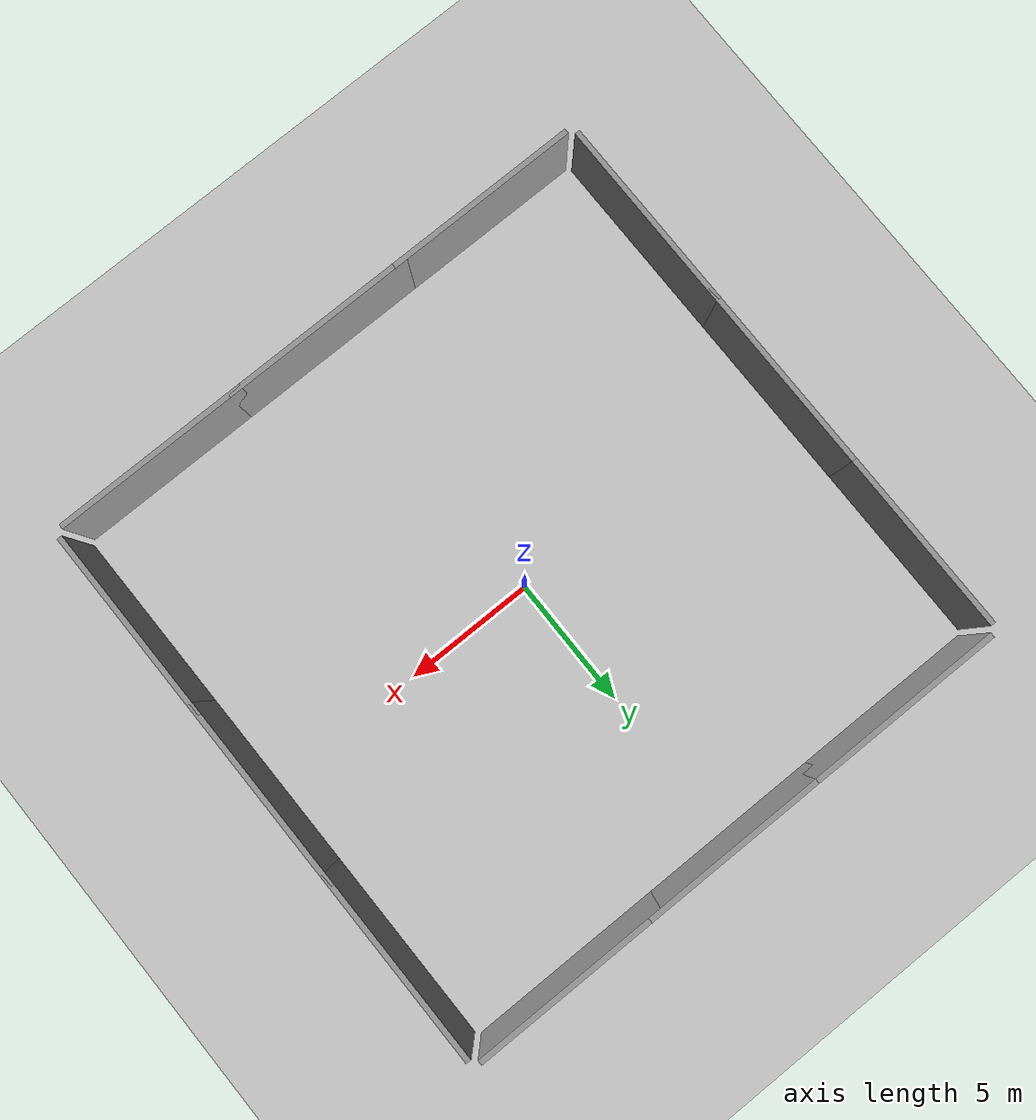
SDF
<sdf version="1.7">
 <world name="default">
  <light name="sun" type="directional">
   <pose>0 0 10 0 -0 0</pose>
   <diffuse>0.8 0.8 0.8 1</diffuse>
   <specular>0.2 0.2 0.2 1</specular>
   <attenuation>
    <range>1000</range>
    <constant>0.9</constant>
    <linear>0.01</linear>
    <quadratic>0.001</quadratic>
   </attenuation>
   <direction>-0.5 0.1 -0.9</direction>
   <spot><inner_angle>0</inner_angle><outer_angle>0</outer_angle><falloff>0</falloff></spot>
  </light>
  <model name="ground_plane">
   <static>1</static>
   <link name="link">
    <collision name="collision">
     <geometry><plane><normal>0 0 1</normal><size>100 100</size></plane></geometry>
     <surface><friction><ode><mu>100</mu><mu2>50</mu2></ode></friction></surface>
    </collision>
    <visual name="visual">
     <cast_shadows>0</cast_shadows>
     <geometry><plane><normal>0 0 1</normal><size>100 100</size></plane></geometry>
     <material>
      <script><uri>file://media/materials/scripts/gazebo.material</uri><name>Gazebo/Grey</name></script>
     </material>
    </visual>
   </link>
  </model>
  <gravity>0 0 -9.8</gravity>
  <magnetic_field>6e-06 2.3e-05 -4.2e-05</magnetic_field>
  <atmosphere type="adiabatic"/>
  <physics type="ode">
   <max_step_size>0.01</max_step_size>
   <real_time_factor>1</real_time_factor>
   <real_time_update_rate>10000</real_time_update_rate>
  </physics>
  <scene><ambient>0.4 0.4 0.4 1</ambient><background>0.7 0.7 0.7 1</background><shadows>1</shadows></scene>
  <spherical_coordinates>
   <surface_model>EARTH_WGS84</surface_model>
   <latitude_deg>0</latitude_deg>
   <longitude_deg>0</longitude_deg>
   <elevation>0</elevation>
   <heading_deg>0</heading_deg>
  </spherical_coordinates>
  <model name="grey_wall">
   <static>1</static>
   <link name="link">
    <pose>0 0 1.4 0 -0 0</pose>
    <collision name="collision"><geometry><box><size>7.5 0.2 2.8</size></box></geometry></collision>
    <visual name="visual">
     <cast_shadows>0</cast_shadows>
     <geometry><box><size>7.5 0.2 2.8</size></box></geometry>
     <material>
      <script>
       <uri>model://grey_wall/materials/scripts</uri>
       <uri>model://grey_wall/materials/textures</uri>
       <name>vrc/grey_wall</name>
      </script>
     </material>
    </visual>
   </link>
   <pose>0 11 0 0 -0 0</pose>
  </model>
  <model name="grey_wall_0">
   <static>1</static>
   <link name="link">
    <pose>0 0 1.4 0 -0 0</pose>
    <collision name="collision"><geometry><box><size>7.5 0.2 2.8</size></box></geometry></collision>
    <visual name="visual">
     <cast_shadows>0</cast_shadows>
     <geometry><box><size>7.5 0.2 2.8</size></box></geometry>
     <material>
      <script>
       <uri>model://grey_wall/materials/scripts</uri>
       <uri>model://grey_wall/materials/textures</uri>
       <name>vrc/grey_wall</name>
      </script>
     </material>
    </visual>
   </link>
   <pose>-11 0 0 0 0 -1.5708</pose>
  </model>
  <model name="grey_wall_0_clone">
   <static>1</static>
   <link name="link">
    <pose>0 0 1.4 0 -0 0</pose>
    <collision name="collision"><geometry><box><size>7.5 0.2 2.8</size></box></geometry></collision>
    <visual name="visual">
     <cast_shadows>0</cast_shadows>
     <geometry><box><size>7.5 0.2 2.8</size></box></geometry>
     <material>
      <script>
       <uri>model://grey_wall/materials/scripts</uri>
       <uri>model://grey_wall/materials/textures</uri>
       <name>vrc/grey_wall</name>
      </script>
     </material>
    </visual>
   </link>
   <pose>-11 -7 0 0 0 -1.5708</pose>
  </model>
  <model name="grey_wall_0_clone_0">
   <static>1</static>
   <link name="link">
    <pose>0 0 1.4 0 -0 0</pose>
    <collision name="collision"><geometry><box><size>7.5 0.2 2.8</size></box></geometry></collision>
    <visual name="visual">
     <cast_shadows>0</cast_shadows>
     <geometry><box><size>7.5 0.2 2.8</size></box></geometry>
     <material>
      <script>
       <uri>model://grey_wall/materials/scripts</uri>
       <uri>model://grey_wall/materials/textures</uri>
       <name>vrc/grey_wall</name>
      </script>
     </material>
    </visual>
   </link>
   <pose>-11 7 0 0 0 -1.5708</pose>
  </model>
  <model name="grey_wall_clone">
   <static>1</static>
   <link name="link">
    <pose>0 0 1.4 0 -0 0</pose>
    <collision name="collision"><geometry><box><size>7.5 0.2 2.8</size></box></geometry></collision>
    <visual name="visual">
     <cast_shadows>0</cast_shadows>
     <geometry><box><size>7.5 0.2 2.8</size></box></geometry>
     <material>
      <script>
       <uri>model://grey_wall/materials/scripts</uri>
       <uri>model://grey_wall/materials/textures</uri>
       <name>vrc/grey_wall</name>
      </script>
     </material>
    </visual>
   </link>
   <pose>-7 11 0 0 -0 0</pose>
  </model>
  <model name="grey_wall_clone_0">
   <static>1</static>
   <link name="link">
    <pose>0 0 1.4 0 -0 0</pose>
    <collision name="collision"><geometry><box><size>7.5 0.2 2.8</size></box></geometry></collision>
    <visual name="visual">
     <cast_shadows>0</cast_shadows>
     <geometry><box><size>7.5 0.2 2.8</size></box></geometry>
     <material>
      <script>
       <uri>model://grey_wall/materials/scripts</uri>
       <uri>model://grey_wall/materials/textures</uri>
       <name>vrc/grey_wall</name>
      </script>
     </material>
    </visual>
   </link>
   <pose>7 11 0 0 -0 0</pose>
  </model>
  <model name="grey_wall_clone_1">
   <static>1</static>
   <link name="link">
    <pose>0 0 1.4 0 -0 0</pose>
    <collision name="collision"><geometry><box><size>7.5 0.2 2.8</size></box></geometry></collision>
    <visual name="visual">
     <cast_shadows>0</cast_shadows>
     <geometry><box><size>7.5 0.2 2.8</size></box></geometry>
     <material>
      <script>
       <uri>model://grey_wall/materials/scripts</uri>
       <uri>model://grey_wall/materials/textures</uri>
       <name>vrc/grey_wall</name>
      </script>
     </material>
    </visual>
   </link>
   <pose>0 -11 0 0 -0 0</pose>
  </model>
  <model name="grey_wall_clone_2">
   <static>1</static>
   <link name="link">
    <pose>0 0 1.4 0 -0 0</pose>
    <collision name="collision"><geometry><box><size>7.5 0.2 2.8</size></box></geometry></collision>
    <visual name="visual">
     <cast_shadows>0</cast_shadows>
     <geometry><box><size>7.5 0.2 2.8</size></box></geometry>
     <material>
      <script>
       <uri>model://grey_wall/materials/scripts</uri>
       <uri>model://grey_wall/materials/textures</uri>
       <name>vrc/grey_wall</name>
      </script>
     </material>
    </visual>
   </link>
   <pose>-7 -11 0 0 -0 0</pose>
  </model>
  <model name="grey_wall_clone_3">
   <static>1</static>
   <link name="link">
    <pose>0 0 1.4 0 -0 0</pose>
    <collision name="collision"><geometry><box><size>7.5 0.2 2.8</size></box></geometry></collision>
    <visual name="visual">
     <cast_shadows>0</cast_shadows>
     <geometry><box><size>7.5 0.2 2.8</size></box></geometry>
     <material>
      <script>
       <uri>model://grey_wall/materials/scripts</uri>
       <uri>model://grey_wall/materials/textures</uri>
       <name>vrc/grey_wall</name>
      </script>
     </material>
    </visual>
   </link>
   <pose>7 -11 0 0 -0 0</pose>
  </model>
  <model name="grey_wall_0_clone_1">
   <static>1</static>
   <link name="link">
    <pose>0 0 1.4 0 -0 0</pose>
    <collision name="collision"><geometry><box><size>7.5 0.2 2.8</size></box></geometry></collision>
    <visual name="visual">
     <cast_shadows>0</cast_shadows>
     <geometry><box><size>7.5 0.2 2.8</size></box></geometry>
     <material>
      <script>
       <uri>model://grey_wall/materials/scripts</uri>
       <uri>model://grey_wall/materials/textures</uri>
       <name>vrc/grey_wall</name>
      </script>
     </material>
    </visual>
   </link>
   <pose>11 0 0 0 0 -1.5708</pose>
  </model>
  <model name="grey_wall_0_clone_2">
   <static>1</static>
   <link name="link">
    <pose>0 0 1.4 0 -0 0</pose>
    <collision name="collision"><geometry><box><size>7.5 0.2 2.8</size></box></geometry></collision>
    <visual name="visual">
     <cast_shadows>0</cast_shadows>
     <geometry><box><size>7.5 0.2 2.8</size></box></geometry>
     <material>
      <script>
       <uri>model://grey_wall/materials/scripts</uri>
       <uri>model://grey_wall/materials/textures</uri>
       <name>vrc/grey_wall</name>
      </script>
     </material>
    </visual>
   </link>
   <pose>11 -7 0 0 0 -1.5708</pose>
  </model>
  <model name="grey_wall_0_clone_3">
   <static>1</static>
   <link name="link">
    <pose>0 0 1.4 0 -0 0</pose>
    <collision name="collision"><geometry><box><size>7.5 0.2 2.8</size></box></geometry></collision>
    <visual name="visual">
     <cast_shadows>0</cast_shadows>
     <geometry><box><size>7.5 0.2 2.8</size></box></geometry>
     <material>
      <script>
       <uri>model://grey_wall/materials/scripts</uri>
       <uri>model://grey_wall/materials/textures</uri>
       <name>vrc/grey_wall</name>
      </script>
     </material>
    </visual>
   </link>
   <pose>11 7 0 0 0 -1.5708</pose>
  </model>
 </world>
</sdf>
